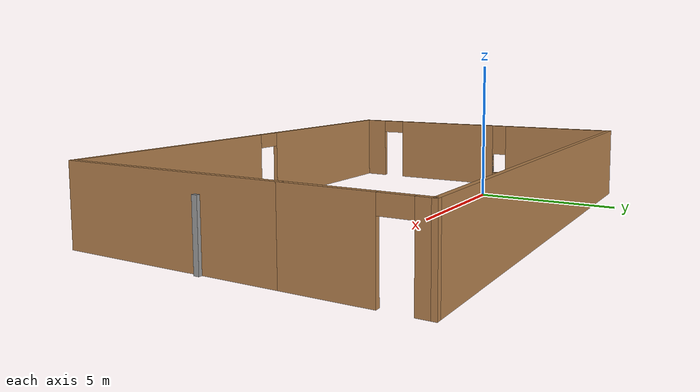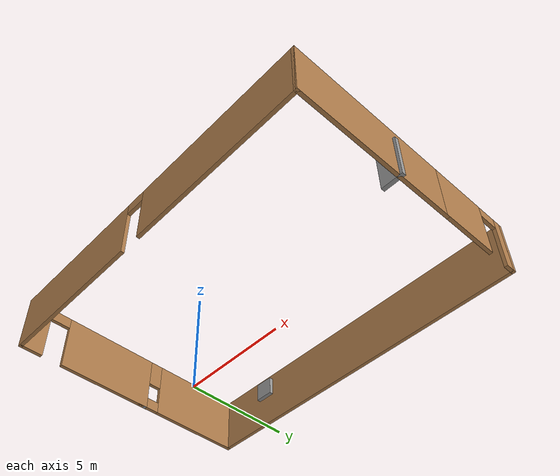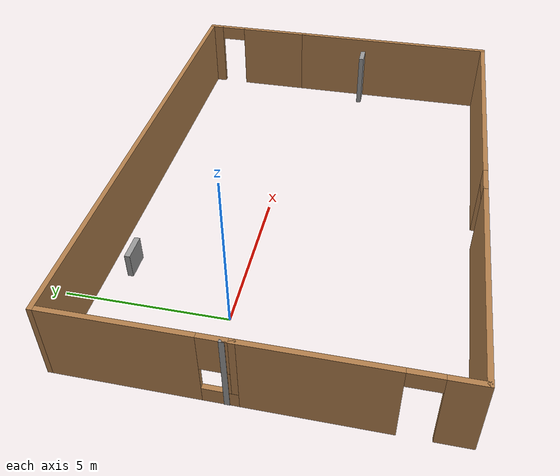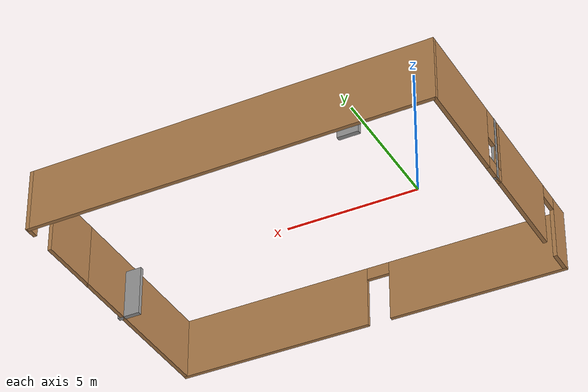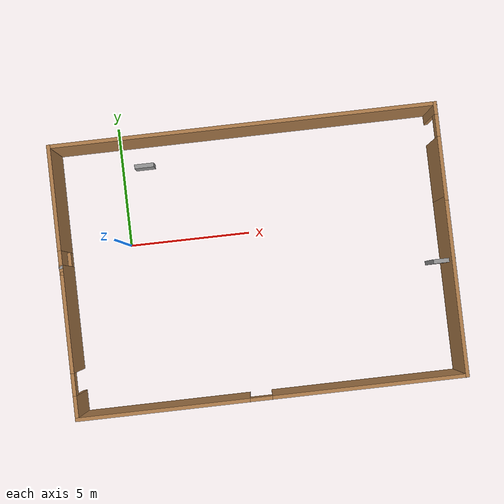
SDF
<?xml version='1.0'?>
<sdf version='1.7'>
  <model name='test'>
    <pose>5.205 -1.295 0 0 -0 0</pose>
    <link name='Door_0'>
      <collision name='Door_0_Collision'>
        <geometry>
          <box>
            <size>0.9 0.17 2</size>
          </box>
        </geometry>
        <pose>0 0 1 0 -0 0</pose>
      </collision>
      <visual name='Door_0_Visual'>
        <pose>0 0 1 0 -0 0</pose>
        <geometry>
          <box>
            <size>0.9 0.17 2</size>
          </box>
        </geometry>
        <material>
          <script>
            <uri>file://media/materials/scripts/gazebo.material</uri>
            <name>Gazebo/Grey</name>
          </script>
        </material>
      </visual>
      <pose>7.53692 -0.829465 0 0 -0 0</pose>
    </link>
    <link name='Wall_0'>
      <collision name='Wall_0_Collision'>
        <geometry>
          <box>
            <size>0.16 0.15 2.5</size>
          </box>
        </geometry>
        <pose>0 0 1.25 0 -0 0</pose>
      </collision>
      <visual name='Wall_0_Visual'>
        <pose>0 0 1.25 0 -0 0</pose>
        <geometry>
          <box>
            <size>0.16 0.15 2.5</size>
          </box>
        </geometry>
        <material>
          <script>
            <uri>file://media/materials/scripts/gazebo.material</uri>
            <name>Gazebo/Grey</name>
          </script>
          <ambient>1 1 1 1</ambient>
        </material>
        <meta>
          <layer>0</layer>
        </meta>
      </visual>
      <pose>-7.8 0.625 0 0 -0 0</pose>
    </link>
    <link name='Wall_1'>
      <pose>-7.795 -2.425 0 0 -0 -1.5708</pose>
      <visual name='Wall_1_Visual_0'>
        <pose>-0.957855 0 1.25 0 -0 0</pose>
        <geometry>
          <box>
            <size>4.33429 0.15 2.5</size>
          </box>
        </geometry>
        <material>
          <script>
            <uri>file://media/materials/scripts/gazebo.material</uri>
            <name>Gazebo/Wood</name>
          </script>
          <ambient>1 1 1 1</ambient>
        </material>
        <meta>
          <layer>0</layer>
        </meta>
      </visual>
      <collision name='Wall_1_Collision_0'>
        <geometry>
          <box>
            <size>4.33429 0.15 2.5</size>
          </box>
        </geometry>
        <pose>-0.957855 0 1.25 0 -0 0</pose>
      </collision>
      <visual name='Wall_1_Visual_1'>
        <pose>2.61714 0 1.25 0 -0 0</pose>
        <geometry>
          <box>
            <size>1.01571 0.15 2.5</size>
          </box>
        </geometry>
        <material>
          <script>
            <uri>file://media/materials/scripts/gazebo.material</uri>
            <name>Gazebo/Wood</name>
          </script>
          <ambient>1 1 1 1</ambient>
        </material>
        <meta>
          <layer>0</layer>
        </meta>
      </visual>
      <collision name='Wall_1_Collision_1'>
        <geometry>
          <box>
            <size>1.01571 0.15 2.5</size>
          </box>
        </geometry>
        <pose>2.61714 0 1.25 0 -0 0</pose>
      </collision>
      <visual name='Wall_1_Visual_2'>
        <pose>1.65929 0 2.25 0 -0 0</pose>
        <geometry>
          <box>
            <size>0.9 0.15 0.5</size>
          </box>
        </geometry>
        <material>
          <script>
            <uri>file://media/materials/scripts/gazebo.material</uri>
            <name>Gazebo/Wood</name>
          </script>
          <ambient>1 1 1 1</ambient>
        </material>
        <meta>
          <layer>0</layer>
        </meta>
      </visual>
      <collision name='Wall_1_Collision_2'>
        <geometry>
          <box>
            <size>0.9 0.15 0.5</size>
          </box>
        </geometry>
        <pose>1.65929 0 2.25 0 -0 0</pose>
      </collision>
    </link>
    <link name='Wall_2'>
      <pose>0.005 -5.475 0 0 -0 0</pose>
      <visual name='Wall_2_Visual_0'>
        <pose>-4.3837 0 1.25 0 -0 0</pose>
        <geometry>
          <box>
            <size>6.9826 0.15 2.5</size>
          </box>
        </geometry>
        <material>
          <script>
            <uri>file://media/materials/scripts/gazebo.material</uri>
            <name>Gazebo/Wood</name>
          </script>
          <ambient>1 1 1 1</ambient>
        </material>
        <meta>
          <layer>0</layer>
        </meta>
      </visual>
      <collision name='Wall_2_Collision_0'>
        <geometry>
          <box>
            <size>6.9826 0.15 2.5</size>
          </box>
        </geometry>
        <pose>-4.3837 0 1.25 0 -0 0</pose>
      </collision>
      <visual name='Wall_2_Visual_1'>
        <pose>3.9413 0 1.25 0 -0 0</pose>
        <geometry>
          <box>
            <size>7.8674 0.15 2.5</size>
          </box>
        </geometry>
        <material>
          <script>
            <uri>file://media/materials/scripts/gazebo.material</uri>
            <name>Gazebo/Wood</name>
          </script>
          <ambient>1 1 1 1</ambient>
        </material>
        <meta>
          <layer>0</layer>
        </meta>
      </visual>
      <collision name='Wall_2_Collision_1'>
        <geometry>
          <box>
            <size>7.8674 0.15 2.5</size>
          </box>
        </geometry>
        <pose>3.9413 0 1.25 0 -0 0</pose>
      </collision>
      <visual name='Wall_2_Visual_2'>
        <pose>-0.442401 0 2.25 0 -0 0</pose>
        <geometry>
          <box>
            <size>0.9 0.15 0.5</size>
          </box>
        </geometry>
        <material>
          <script>
            <uri>file://media/materials/scripts/gazebo.material</uri>
            <name>Gazebo/Wood</name>
          </script>
          <ambient>1 1 1 1</ambient>
        </material>
        <meta>
          <layer>0</layer>
        </meta>
      </visual>
      <collision name='Wall_2_Collision_2'>
        <geometry>
          <box>
            <size>0.9 0.15 0.5</size>
          </box>
        </geometry>
        <pose>-0.442401 0 2.25 0 -0 0</pose>
      </collision>
    </link>
    <link name='Wall_3'>
      <collision name='Wall_3_Collision'>
        <geometry>
          <box>
            <size>7.25 0.15 2.5</size>
          </box>
        </geometry>
        <pose>0 0 1.25 0 -0 0</pose>
      </collision>
      <visual name='Wall_3_Visual'>
        <pose>0 0 1.25 0 -0 0</pose>
        <geometry>
          <box>
            <size>7.25 0.15 2.5</size>
          </box>
        </geometry>
        <material>
          <script>
            <uri>file://media/materials/scripts/gazebo.material</uri>
            <name>Gazebo/Wood</name>
          </script>
          <ambient>1 1 1 1</ambient>
        </material>
        <meta>
          <layer>0</layer>
        </meta>
      </visual>
      <pose>7.805 -1.925 0 0 -0 1.5708</pose>
    </link>
    <link name='Wall_4'>
      <pose>7.805 3.55 0 0 -0 1.5708</pose>
      <visual name='Wall_4_Visual_0'>
        <pose>-0.709159 0 1.25 0 -0 0</pose>
        <geometry>
          <box>
            <size>2.58168 0.15 2.5</size>
          </box>
        </geometry>
        <material>
          <script>
            <uri>file://media/materials/scripts/gazebo.material</uri>
            <name>Gazebo/Wood</name>
          </script>
          <ambient>1 1 1 1</ambient>
        </material>
        <meta>
          <layer>0</layer>
        </meta>
      </visual>
      <collision name='Wall_4_Collision_0'>
        <geometry>
          <box>
            <size>2.58168 0.15 2.5</size>
          </box>
        </geometry>
        <pose>-0.709159 0 1.25 0 -0 0</pose>
      </collision>
      <visual name='Wall_4_Visual_1'>
        <pose>1.74084 0 1.25 0 -0 0</pose>
        <geometry>
          <box>
            <size>0.518319 0.15 2.5</size>
          </box>
        </geometry>
        <material>
          <script>
            <uri>file://media/materials/scripts/gazebo.material</uri>
            <name>Gazebo/Wood</name>
          </script>
          <ambient>1 1 1 1</ambient>
        </material>
        <meta>
          <layer>0</layer>
        </meta>
      </visual>
      <collision name='Wall_4_Collision_1'>
        <geometry>
          <box>
            <size>0.518319 0.15 2.5</size>
          </box>
        </geometry>
        <pose>1.74084 0 1.25 0 -0 0</pose>
      </collision>
      <visual name='Wall_4_Visual_2'>
        <pose>1.03168 0 2.25 0 -0 0</pose>
        <geometry>
          <box>
            <size>0.9 0.15 0.5</size>
          </box>
        </geometry>
        <material>
          <script>
            <uri>file://media/materials/scripts/gazebo.material</uri>
            <name>Gazebo/Wood</name>
          </script>
          <ambient>1 1 1 1</ambient>
        </material>
        <meta>
          <layer>0</layer>
        </meta>
      </visual>
      <collision name='Wall_4_Collision_2'>
        <geometry>
          <box>
            <size>0.9 0.15 0.5</size>
          </box>
        </geometry>
        <pose>1.03168 0 2.25 0 -0 0</pose>
      </collision>
    </link>
    <link name='Wall_5'>
      <collision name='Wall_5_Collision'>
        <geometry>
          <box>
            <size>15.75 0.15 2.5</size>
          </box>
        </geometry>
        <pose>0 0 1.25 0 -0 0</pose>
      </collision>
      <visual name='Wall_5_Visual'>
        <pose>0 0 1.25 0 -0 0</pose>
        <geometry>
          <box>
            <size>15.75 0.15 2.5</size>
          </box>
        </geometry>
        <material>
          <script>
            <uri>file://media/materials/scripts/gazebo.material</uri>
            <name>Gazebo/Wood</name>
          </script>
          <ambient>1 1 1 1</ambient>
        </material>
        <meta>
          <layer>0</layer>
        </meta>
      </visual>
      <pose>0.005 5.475 0 0 -0 3.14159</pose>
    </link>
    <link name='Wall_6'>
      <pose>-7.795 2.925 0 0 -0 -1.5708</pose>
      <visual name='Wall_6_Visual_0'>
        <pose>-0.489659 0 1.25 0 -0 0</pose>
        <geometry>
          <box>
            <size>4.27068 0.15 2.5</size>
          </box>
        </geometry>
        <material>
          <script>
            <uri>file://media/materials/scripts/gazebo.material</uri>
            <name>Gazebo/Wood</name>
          </script>
          <ambient>1 1 1 1</ambient>
        </material>
        <meta>
          <layer>0</layer>
        </meta>
      </visual>
      <collision name='Wall_6_Collision_0'>
        <geometry>
          <box>
            <size>4.27068 0.15 2.5</size>
          </box>
        </geometry>
        <pose>-0.489659 0 1.25 0 -0 0</pose>
      </collision>
      <visual name='Wall_6_Visual_1'>
        <pose>2.13534 0 0.25 0 -0 0</pose>
        <geometry>
          <box>
            <size>0.979318 0.15 0.5</size>
          </box>
        </geometry>
        <material>
          <script>
            <uri>file://media/materials/scripts/gazebo.material</uri>
            <name>Gazebo/Wood</name>
          </script>
          <ambient>1 1 1 1</ambient>
        </material>
        <meta>
          <layer>0</layer>
        </meta>
      </visual>
      <collision name='Wall_6_Collision_1'>
        <geometry>
          <box>
            <size>0.979318 0.15 0.5</size>
          </box>
        </geometry>
        <pose>2.13534 0 0.25 0 -0 0</pose>
      </collision>
      <visual name='Wall_6_Visual_2'>
        <pose>2.53534 0 1.5 0 -0 0</pose>
        <geometry>
          <box>
            <size>0.179318 0.15 2</size>
          </box>
        </geometry>
        <material>
          <script>
            <uri>file://media/materials/scripts/gazebo.material</uri>
            <name>Gazebo/Wood</name>
          </script>
          <ambient>1 1 1 1</ambient>
        </material>
        <meta>
          <layer>0</layer>
        </meta>
      </visual>
      <collision name='Wall_6_Collision_2'>
        <geometry>
          <box>
            <size>0.179318 0.15 2</size>
          </box>
        </geometry>
        <pose>2.53534 0 1.5 0 -0 0</pose>
      </collision>
      <visual name='Wall_6_Visual_3'>
        <pose>2.04568 0 1.9 0 -0 0</pose>
        <geometry>
          <box>
            <size>0.8 0.15 1.2</size>
          </box>
        </geometry>
        <material>
          <script>
            <uri>file://media/materials/scripts/gazebo.material</uri>
            <name>Gazebo/Wood</name>
          </script>
          <ambient>1 1 1 1</ambient>
        </material>
        <meta>
          <layer>0</layer>
        </meta>
      </visual>
      <collision name='Wall_6_Collision_3'>
        <geometry>
          <box>
            <size>0.8 0.15 1.2</size>
          </box>
        </geometry>
        <pose>2.04568 0 1.9 0 -0 0</pose>
      </collision>
    </link>
    <link name='Window_1'>
      <collision name='Window_1_Collision'>
        <geometry>
          <box>
            <size>0.8 0.17 0.8</size>
          </box>
        </geometry>
        <pose>0 0 0.4 0 -0 0</pose>
      </collision>
      <visual name='Window_1_Visual'>
        <pose>0 0 0.4 0 -0 0</pose>
        <geometry>
          <box>
            <size>0.8 0.17 0.8</size>
          </box>
        </geometry>
        <material>
          <script>
            <uri>file://media/materials/scripts/gazebo.material</uri>
            <name>Gazebo/Grey</name>
          </script>
        </material>
      </visual>
      <pose>-4.18045 4.45962 0.5 0 -0 0</pose>
    </link>
    <static>1</static>
  </model>
</sdf>
